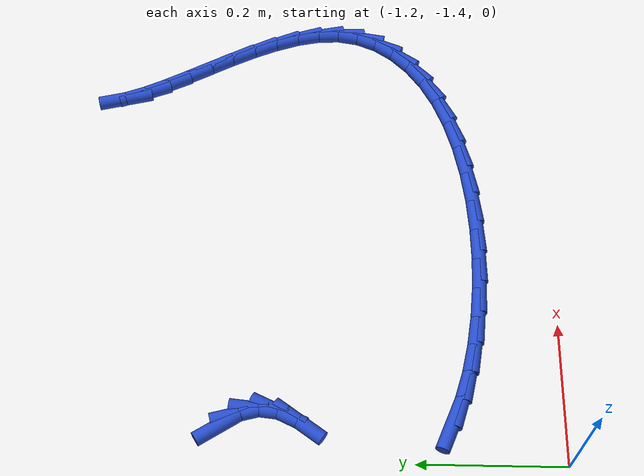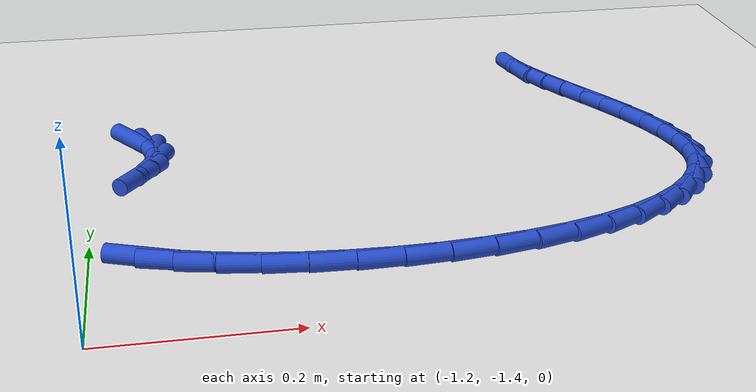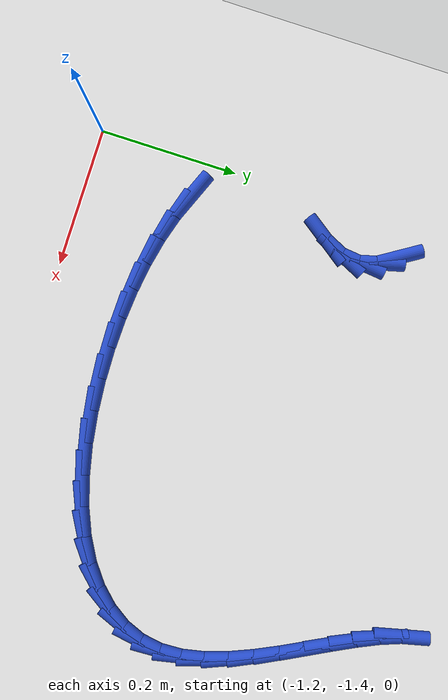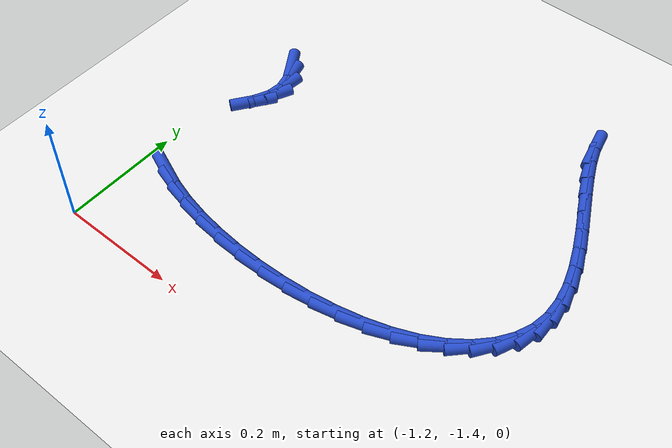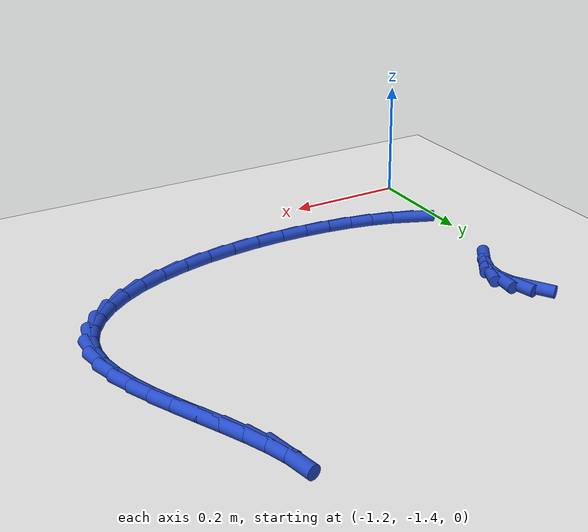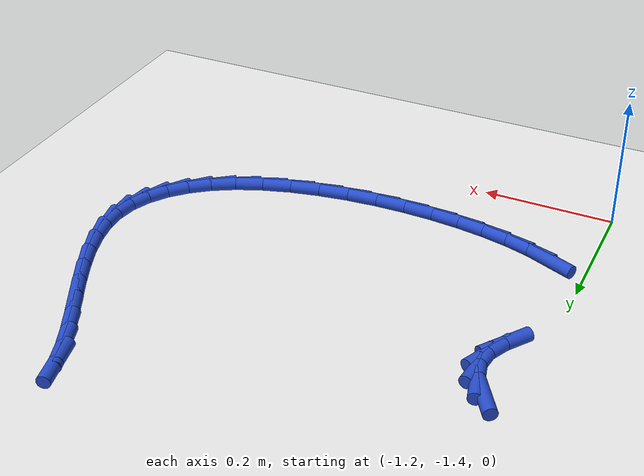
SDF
<sdf version="1.6">
 <world name="default">
  <model name="ground_plane">
   <static>1</static>
   <link name="link">
    <collision name="collision">
     <geometry><plane><normal>0 0 1</normal><size>100 100</size></plane></geometry>
     <surface><friction><ode><mu>100</mu><mu2>50</mu2></ode></friction></surface>
    </collision>
    <visual name="visual">
     <cast_shadows>0</cast_shadows>
     <geometry><plane><normal>0 0 1</normal><size>100 100</size></plane></geometry>
     <material>
      <script><uri>file://media/materials/scripts/gazebo.material</uri><name>Gazebo/WhiteGlow</name></script>
     </material>
    </visual>
   </link>
  </model>
  <model name="line">
   <link name="link_194">
    <pose>-1.1529475139378582 -0.9462061357194944 0.01 0 1.57 -1.0072192440287269</pose>
    <collision name="collision">
     <geometry><cylinder><radius>0.01</radius><length>0.08</length></cylinder></geometry>
    </collision>
    <visual name="visual">
     <material>
      <script><name>Gazebo/Blue</name><uri>file://media/materials/scripts/gazebo.material</uri></script>
     </material>
     <geometry><cylinder><radius>0.01</radius><length>0.08</length></cylinder></geometry>
    </visual>
   </link>
   <link name="link_195">
    <pose>-1.1382874997710617 -0.9694044210463413 0.01 0 1.57 -1.3183280158297535</pose>
    <collision name="collision">
     <geometry><cylinder><radius>0.01</radius><length>0.08</length></cylinder></geometry>
    </collision>
    <visual name="visual">
     <material>
      <script><name>Gazebo/Blue</name><uri>file://media/materials/scripts/gazebo.material</uri></script>
     </material>
     <geometry><cylinder><radius>0.01</radius><length>0.08</length></cylinder></geometry>
    </visual>
   </link>
   <link name="link_196">
    <pose>-1.1319003367909728 -0.9941634742440606 0.01 0 1.57 1.462905799390201</pose>
    <collision name="collision">
     <geometry><cylinder><radius>0.01</radius><length>0.08</length></cylinder></geometry>
    </collision>
    <visual name="visual">
     <material>
      <script><name>Gazebo/Blue</name><uri>file://media/materials/scripts/gazebo.material</uri></script>
     </material>
     <geometry><cylinder><radius>0.01</radius><length>0.08</length></cylinder></geometry>
    </visual>
   </link>
   <link name="link_197">
    <pose>-1.134720767125478 -1.020203556598372 0.01 0 1.57 1.1336951897670475</pose>
    <collision name="collision">
     <geometry><cylinder><radius>0.01</radius><length>0.08</length></cylinder></geometry>
    </collision>
    <visual name="visual">
     <material>
      <script><name>Gazebo/Blue</name><uri>file://media/materials/scripts/gazebo.material</uri></script>
     </material>
     <geometry><cylinder><radius>0.01</radius><length>0.08</length></cylinder></geometry>
    </visual>
   </link>
   <link name="link_198">
    <pose>-1.147345771879636 -1.047223710810002 0.01 0 1.57 0.9541208794298328</pose>
    <collision name="collision">
     <geometry><cylinder><radius>0.01</radius><length>0.08</length></cylinder></geometry>
    </collision>
    <visual name="visual">
     <material>
      <script><name>Gazebo/Blue</name><uri>file://media/materials/scripts/gazebo.material</uri></script>
     </material>
     <geometry><cylinder><radius>0.01</radius><length>0.08</length></cylinder></geometry>
    </visual>
   </link>
   <link name="link_207">
    <pose>-1.1463750486369473 -1.2503908370013912 0.01 0 1.57 -0.3896779288992725</pose>
    <collision name="collision">
     <geometry><cylinder><radius>0.01</radius><length>0.08</length></cylinder></geometry>
    </collision>
    <visual name="visual">
     <material>
      <script><name>Gazebo/Blue</name><uri>file://media/materials/scripts/gazebo.material</uri></script>
     </material>
     <geometry><cylinder><radius>0.01</radius><length>0.08</length></cylinder></geometry>
    </visual>
   </link>
   <link name="link_208">
    <pose>-1.1139773981124534 -1.2636958547047032 0.01 0 1.57 -0.2927428213852863</pose>
    <collision name="collision">
     <geometry><cylinder><radius>0.01</radius><length>0.08</length></cylinder></geometry>
    </collision>
    <visual name="visual">
     <material>
      <script><name>Gazebo/Blue</name><uri>file://media/materials/scripts/gazebo.material</uri></script>
     </material>
     <geometry><cylinder><radius>0.01</radius><length>0.08</length></cylinder></geometry>
    </visual>
   </link>
   <link name="link_209">
    <pose>-1.077225748214294 -1.2747728869216697 0.01 0 1.57 -0.2140315746563509</pose>
    <collision name="collision">
     <geometry><cylinder><radius>0.01</radius><length>0.08</length></cylinder></geometry>
    </collision>
    <visual name="visual">
     <material>
      <script><name>Gazebo/Blue</name><uri>file://media/materials/scripts/gazebo.material</uri></script>
     </material>
     <geometry><cylinder><radius>0.01</radius><length>0.08</length></cylinder></geometry>
    </visual>
   </link>
   <link name="link_210">
    <pose>-1.0368937014732036 -1.2835394936726234 0.01 0 1.57 -0.14668822607502216</pose>
    <collision name="collision">
     <geometry><cylinder><radius>0.01</radius><length>0.08</length></cylinder></geometry>
    </collision>
    <visual name="visual">
     <material>
      <script><name>Gazebo/Blue</name><uri>file://media/materials/scripts/gazebo.material</uri></script>
     </material>
     <geometry><cylinder><radius>0.01</radius><length>0.08</length></cylinder></geometry>
    </visual>
   </link>
   <link name="link_211">
    <pose>-0.9937548604199139 -1.289913234977899 0.01 0 1.57 -0.08608867258653377</pose>
    <collision name="collision">
     <geometry><cylinder><radius>0.01</radius><length>0.08</length></cylinder></geometry>
    </collision>
    <visual name="visual">
     <material>
      <script><name>Gazebo/Blue</name><uri>file://media/materials/scripts/gazebo.material</uri></script>
     </material>
     <geometry><cylinder><radius>0.01</radius><length>0.08</length></cylinder></geometry>
    </visual>
   </link>
   <link name="link_212">
    <pose>-0.9485828275851604 -1.2938116708578289 0.01 0 1.57 -0.0288664924108408</pose>
    <collision name="collision">
     <geometry><cylinder><radius>0.01</radius><length>0.08</length></cylinder></geometry>
    </collision>
    <visual name="visual">
     <material>
      <script><name>Gazebo/Blue</name><uri>file://media/materials/scripts/gazebo.material</uri></script>
     </material>
     <geometry><cylinder><radius>0.01</radius><length>0.08</length></cylinder></geometry>
    </visual>
   </link>
   <link name="link_213">
    <pose>-0.902151205499674 -1.2951523613327476 0.01 0 1.57 0.027690302114491135</pose>
    <collision name="collision">
     <geometry><cylinder><radius>0.01</radius><length>0.08</length></cylinder></geometry>
    </collision>
    <visual name="visual">
     <material>
      <script><name>Gazebo/Blue</name><uri>file://media/materials/scripts/gazebo.material</uri></script>
     </material>
     <geometry><cylinder><radius>0.01</radius><length>0.08</length></cylinder></geometry>
    </visual>
   </link>
   <link name="link_214">
    <pose>-0.8552335966941904 -1.2938528664229885 0.01 0 1.57 0.08604310880921782</pose>
    <collision name="collision">
     <geometry><cylinder><radius>0.01</radius><length>0.08</length></cylinder></geometry>
    </collision>
    <visual name="visual">
     <material>
      <script><name>Gazebo/Blue</name><uri>file://media/materials/scripts/gazebo.material</uri></script>
     </material>
     <geometry><cylinder><radius>0.01</radius><length>0.08</length></cylinder></geometry>
    </visual>
   </link>
   <link name="link_215">
    <pose>-0.808603603699442 -1.2898307461488847 0.01 0 1.57 0.14871544488301983</pose>
    <collision name="collision">
     <geometry><cylinder><radius>0.01</radius><length>0.08</length></cylinder></geometry>
    </collision>
    <visual name="visual">
     <material>
      <script><name>Gazebo/Blue</name><uri>file://media/materials/scripts/gazebo.material</uri></script>
     </material>
     <geometry><cylinder><radius>0.01</radius><length>0.08</length></cylinder></geometry>
    </visual>
   </link>
   <link name="link_216">
    <pose>-0.7630348290461604 -1.28300356053077 0.01 0 1.57 0.21858253893775154</pose>
    <collision name="collision">
     <geometry><cylinder><radius>0.01</radius><length>0.08</length></cylinder></geometry>
    </collision>
    <visual name="visual">
     <material>
      <script><name>Gazebo/Blue</name><uri>file://media/materials/scripts/gazebo.material</uri></script>
     </material>
     <geometry><cylinder><radius>0.01</radius><length>0.08</length></cylinder></geometry>
    </visual>
   </link>
   <link name="link_217">
    <pose>-0.7193008752650819 -1.2732888695889784 0.01 0 1.57 0.2991790985123576</pose>
    <collision name="collision">
     <geometry><cylinder><radius>0.01</radius><length>0.08</length></cylinder></geometry>
    </collision>
    <visual name="visual">
     <material>
      <script><name>Gazebo/Blue</name><uri>file://media/materials/scripts/gazebo.material</uri></script>
     </material>
     <geometry><cylinder><radius>0.01</radius><length>0.08</length></cylinder></geometry>
    </visual>
   </link>
   <link name="link_218">
    <pose>-0.6781753448869372 -1.2606042333438432 0.01 0 1.57 0.39502952151649934</pose>
    <collision name="collision">
     <geometry><cylinder><radius>0.01</radius><length>0.08</length></cylinder></geometry>
    </collision>
    <visual name="visual">
     <material>
      <script><name>Gazebo/Blue</name><uri>file://media/materials/scripts/gazebo.material</uri></script>
     </material>
     <geometry><cylinder><radius>0.01</radius><length>0.08</length></cylinder></geometry>
    </visual>
   </link>
   <link name="link_219">
    <pose>-0.6404318404424619 -1.2448672118156978 0.01 0 1.57 0.5113656334270825</pose>
    <collision name="collision">
     <geometry><cylinder><radius>0.01</radius><length>0.08</length></cylinder></geometry>
    </collision>
    <visual name="visual">
     <material>
      <script><name>Gazebo/Blue</name><uri>file://media/materials/scripts/gazebo.material</uri></script>
     </material>
     <geometry><cylinder><radius>0.01</radius><length>0.08</length></cylinder></geometry>
    </visual>
   </link>
   <link name="link_220">
    <pose>-0.6068320046417243 -1.2260125630504377 0.01 0 1.57 0.6472655016949825</pose>
    <collision name="collision">
     <geometry><cylinder><radius>0.01</radius><length>0.08</length></cylinder></geometry>
    </collision>
    <visual name="visual">
     <material>
      <script><name>Gazebo/Blue</name><uri>file://media/materials/scripts/gazebo.material</uri></script>
     </material>
     <geometry><cylinder><radius>0.01</radius><length>0.08</length></cylinder></geometry>
    </visual>
   </link>
   <link name="link_221">
    <pose>-0.5779791450349692 -1.2042027284516594 0.01 0 1.57 0.8025977229421243</pose>
    <collision name="collision">
     <geometry><cylinder><radius>0.01</radius><length>0.08</length></cylinder></geometry>
    </collision>
    <visual name="visual">
     <material>
      <script><name>Gazebo/Blue</name><uri>file://media/materials/scripts/gazebo.material</uri></script>
     </material>
     <geometry><cylinder><radius>0.01</radius><length>0.08</length></cylinder></geometry>
    </visual>
   </link>
   <link name="link_222">
    <pose>-0.5543644359760656 -1.1797613951165098 0.01 0 1.57 0.9813127878937373</pose>
    <collision name="collision">
     <geometry><cylinder><radius>0.01</radius><length>0.08</length></cylinder></geometry>
    </collision>
    <visual name="visual">
     <material>
      <script><name>Gazebo/Blue</name><uri>file://media/materials/scripts/gazebo.material</uri></script>
     </material>
     <geometry><cylinder><radius>0.01</radius><length>0.08</length></cylinder></geometry>
    </visual>
   </link>
   <link name="link_223">
    <pose>-0.536476678604609 -1.153015662785264 0.01 0 1.57 1.18481585421922</pose>
    <collision name="collision">
     <geometry><cylinder><radius>0.01</radius><length>0.08</length></cylinder></geometry>
    </collision>
    <visual name="visual">
     <material>
      <script><name>Gazebo/Blue</name><uri>file://media/materials/scripts/gazebo.material</uri></script>
     </material>
     <geometry><cylinder><radius>0.01</radius><length>0.08</length></cylinder></geometry>
    </visual>
   </link>
   <link name="link_224">
    <pose>-0.5248046740601936 -1.1242926311981933 0.01 0 1.57 1.4074969461800557</pose>
    <collision name="collision">
     <geometry><cylinder><radius>0.01</radius><length>0.08</length></cylinder></geometry>
    </collision>
    <visual name="visual">
     <material>
      <script><name>Gazebo/Blue</name><uri>file://media/materials/scripts/gazebo.material</uri></script>
     </material>
     <geometry><cylinder><radius>0.01</radius><length>0.08</length></cylinder></geometry>
    </visual>
   </link>
   <link name="link_225">
    <pose>-0.5198002158014225 -1.093919614183197 0.01 0 1.57 -1.5283309882016092</pose>
    <collision name="collision">
     <geometry><cylinder><radius>0.01</radius><length>0.08</length></cylinder></geometry>
    </collision>
    <visual name="visual">
     <material>
      <script><name>Gazebo/Blue</name><uri>file://media/materials/scripts/gazebo.material</uri></script>
     </material>
     <geometry><cylinder><radius>0.01</radius><length>0.08</length></cylinder></geometry>
    </visual>
   </link>
   <link name="link_226">
    <pose>-0.5211468047459129 -1.0622283701029036 0.01 0 1.57 -1.369826359024398</pose>
    <collision name="collision">
     <geometry><cylinder><radius>0.01</radius><length>0.08</length></cylinder></geometry>
    </collision>
    <visual name="visual">
     <material>
      <script><name>Gazebo/Blue</name><uri>file://media/materials/scripts/gazebo.material</uri></script>
     </material>
     <geometry><cylinder><radius>0.01</radius><length>0.08</length></cylinder></geometry>
    </visual>
   </link>
   <link name="link_227">
    <pose>-0.5278030560522788 -1.0295548507485697 0.01 0 1.57 -1.254738214494976</pose>
    <collision name="collision">
     <geometry><cylinder><radius>0.01</radius><length>0.08</length></cylinder></geometry>
    </collision>
    <visual name="visual">
     <material>
      <script><name>Gazebo/Blue</name><uri>file://media/materials/scripts/gazebo.material</uri></script>
     </material>
     <geometry><cylinder><radius>0.01</radius><length>0.08</length></cylinder></geometry>
    </visual>
   </link>
   <link name="link_228">
    <pose>-0.538699267759967 -0.9962351717246011 0.01 0 1.57 -1.1746356334363124</pose>
    <collision name="collision">
     <geometry><cylinder><radius>0.01</radius><length>0.08</length></cylinder></geometry>
    </collision>
    <visual name="visual">
     <material>
      <script><name>Gazebo/Blue</name><uri>file://media/materials/scripts/gazebo.material</uri></script>
     </material>
     <geometry><cylinder><radius>0.01</radius><length>0.08</length></cylinder></geometry>
    </visual>
   </link>
   <link name="link_229">
    <pose>-0.5527657379084258 -0.9626054486353995 0.01 0 1.57 -1.1223752290946127</pose>
    <collision name="collision">
     <geometry><cylinder><radius>0.01</radius><length>0.08</length></cylinder></geometry>
    </collision>
    <visual name="visual">
     <material>
      <script><name>Gazebo/Blue</name><uri>file://media/materials/scripts/gazebo.material</uri></script>
     </material>
     <geometry><cylinder><radius>0.01</radius><length>0.08</length></cylinder></geometry>
    </visual>
   </link>
   <link name="link_230">
    <pose>-0.5689327645371025 -0.9290017970853727 0.01 0 1.57 -1.0933555352544868</pose>
    <collision name="collision">
     <geometry><cylinder><radius>0.01</radius><length>0.08</length></cylinder></geometry>
    </collision>
    <visual name="visual">
     <material>
      <script><name>Gazebo/Blue</name><uri>file://media/materials/scripts/gazebo.material</uri></script>
     </material>
     <geometry><cylinder><radius>0.01</radius><length>0.08</length></cylinder></geometry>
    </visual>
   </link>
   <link name="link_231">
    <pose>-0.5861306456854455 -0.8957603326789222 0.01 0 1.57 -1.0855714475457496</pose>
    <collision name="collision">
     <geometry><cylinder><radius>0.01</radius><length>0.08</length></cylinder></geometry>
    </collision>
    <visual name="visual">
     <material>
      <script><name>Gazebo/Blue</name><uri>file://media/materials/scripts/gazebo.material</uri></script>
     </material>
     <geometry><cylinder><radius>0.01</radius><length>0.08</length></cylinder></geometry>
    </visual>
   </link>
   <link name="link_232">
    <pose>-0.6032896793929012 -0.8632171710204546 0.01 0 1.57 -1.0996587793957264</pose>
    <collision name="collision">
     <geometry><cylinder><radius>0.01</radius><length>0.08</length></cylinder></geometry>
    </collision>
    <visual name="visual">
     <material>
      <script><name>Gazebo/Blue</name><uri>file://media/materials/scripts/gazebo.material</uri></script>
     </material>
     <geometry><cylinder><radius>0.01</radius><length>0.08</length></cylinder></geometry>
    </visual>
   </link>
   <link name="link_233">
    <pose>-0.6193401636989188 -0.8317084277143726 0.01 0 1.57 -1.139420543996083</pose>
    <collision name="collision">
     <geometry><cylinder><radius>0.01</radius><length>0.08</length></cylinder></geometry>
    </collision>
    <visual name="visual">
     <material>
      <script><name>Gazebo/Blue</name><uri>file://media/materials/scripts/gazebo.material</uri></script>
     </material>
     <geometry><cylinder><radius>0.01</radius><length>0.08</length></cylinder></geometry>
    </visual>
   </link>
   <link name="link_234">
    <pose>-0.6332123966429449 -0.801570218365082 0.01 0 1.57 -1.2131842100403518</pose>
    <collision name="collision">
     <geometry><cylinder><radius>0.01</radius><length>0.08</length></cylinder></geometry>
    </collision>
    <visual name="visual">
     <material>
      <script><name>Gazebo/Blue</name><uri>file://media/materials/scripts/gazebo.material</uri></script>
     </material>
     <geometry><cylinder><radius>0.01</radius><length>0.08</length></cylinder></geometry>
    </visual>
   </link>
   <link name="link_235">
    <pose>-0.6438366762644276 -0.7731386585769868 0.01 0 1.57 -1.3362077647955097</pose>
    <collision name="collision">
     <geometry><cylinder><radius>0.01</radius><length>0.08</length></cylinder></geometry>
    </collision>
    <visual name="visual">
     <material>
      <script><name>Gazebo/Blue</name><uri>file://media/materials/scripts/gazebo.material</uri></script>
     </material>
     <geometry><cylinder><radius>0.01</radius><length>0.08</length></cylinder></geometry>
    </visual>
   </link>
  </model>
 </world>
</sdf>
